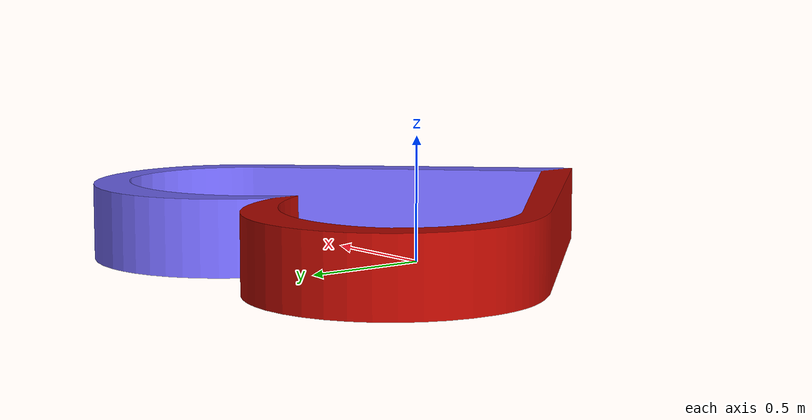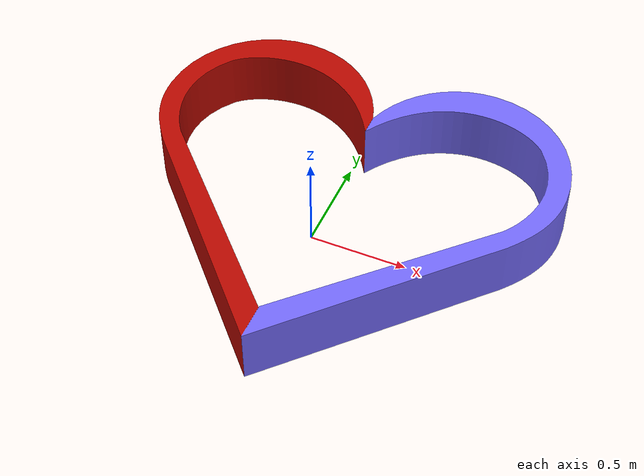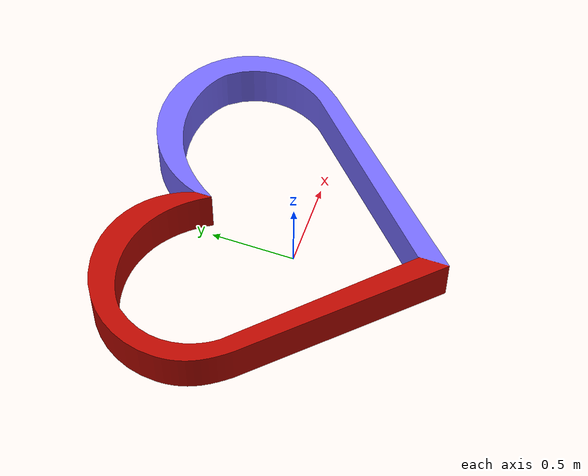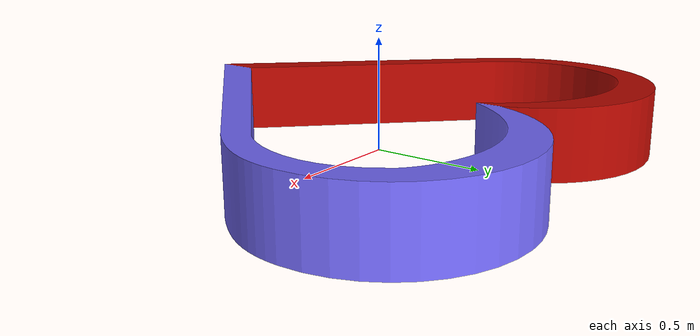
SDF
<?xml version="1.0"?>
<sdf version="1.6">
  <model name="love">
    <static>true</static>

    <link name="link">

      <!-- VISUAL -->
      <visual name="love_visual">
        <cast_shadows>false</cast_shadows>
        <geometry>
          <mesh>
            <uri>model://love/meshes/tinker.dae</uri>
            <scale>0.015 0.015 0.015</scale>
          </mesh>
        </geometry>
      </visual>

      <!-- COLLISION -->
      <collision name="love_collision">
        <geometry>
          <mesh>
            <uri>model://love/meshes/tinker.dae</uri>
            <scale>0.015 0.015 0.015</scale>
          </mesh>
        </geometry>
      </collision>

    </link>
  </model>
</sdf>
